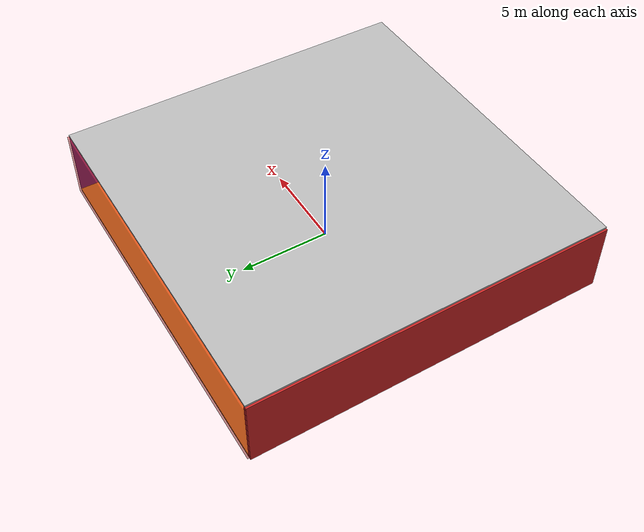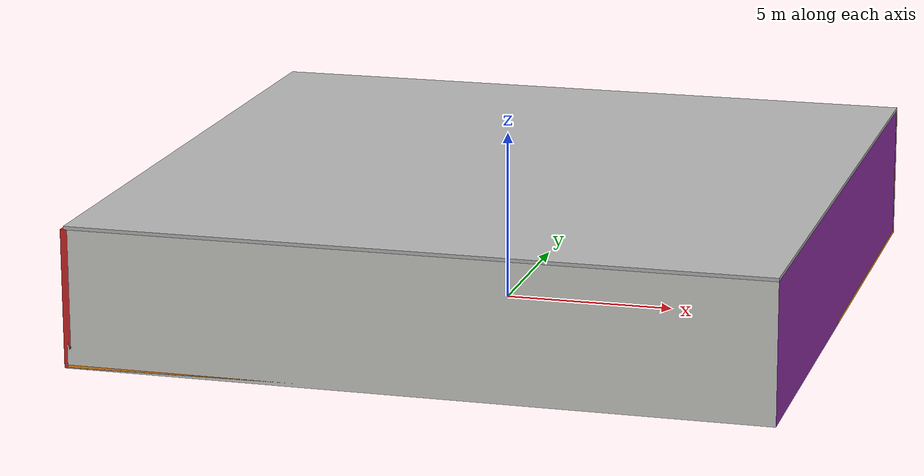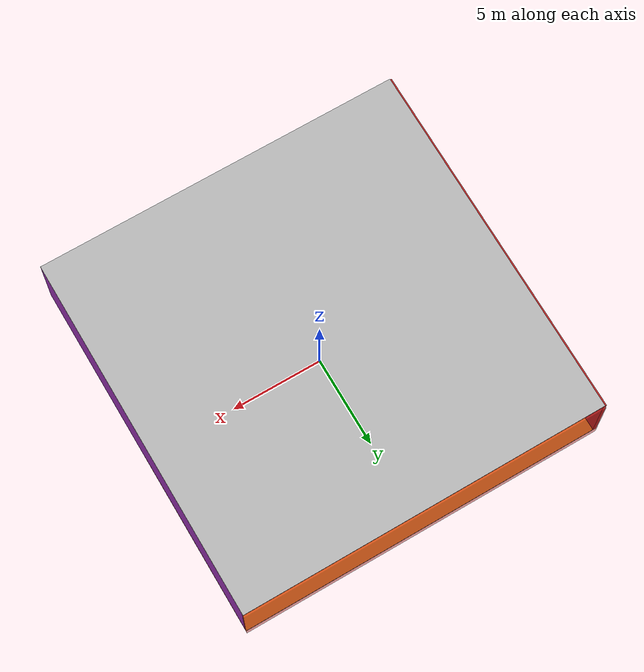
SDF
<sdf version="1.4">
 <world name="default">
  <physics type="ode">
   <max_step_size>0.001</max_step_size>
   <real_time_factor>1</real_time_factor>
   <real_time_update_rate>1000</real_time_update_rate>
   <gravity>0 0 -9.8</gravity>
  </physics>
  <scene><ambient>0.4 0.4 0.4 1</ambient><background>0.7 0.7 0.7 1</background><shadows>1</shadows></scene>
  <model name="Surrounding">
   <static>1</static>
   <link name="Ceiling">
    <collision name="Ceiling_Collision"><geometry><box><size>20 20 0.1</size></box></geometry></collision>
    <visual name="Ceiling_Visual">
     <geometry><box><size>20 20 0.1</size></box></geometry>
     <material>
      <script><uri>file://media/materials/scripts/gazebo.material</uri><name>Gazebo/Pioneer2Body</name></script>
     </material>
    </visual>
    <pose>0 0 4.05 0 0 0</pose>
   </link>
   <link name="Wall_South">
    <collision name="Wall_South_Collision">
     <geometry><box><size>20 0 4</size></box></geometry>
     <pose>0 0 2 0 -0 0</pose>
    </collision>
    <visual name="Wall_South_Visual">
     <pose>0 0 2 0 -0 0</pose>
     <geometry><box><size>20 0 4</size></box></geometry>
     <material>
      <script><uri>file://media/materials/scripts/gazebo.material</uri><name>Gazebo/CeilingTiled</name></script>
     </material>
    </visual>
    <velocity_decay><linear>0</linear><angular>0</angular></velocity_decay>
    <pose>0 -10 0 0 -0 0</pose>
   </link>
   <link name="Wall_East">
    <collision name="Wall_21_Collision">
     <geometry><box><size>20 0 4</size></box></geometry>
     <pose>0 0 2 0 -0 0</pose>
    </collision>
    <visual name="Wall_21_Visual">
     <pose>0 0 2 0 -0 0</pose>
     <geometry><box><size>20 0 4</size></box></geometry>
     <material>
      <script><uri>file://media/materials/scripts/gazebo.material</uri><name>Gazebo/PurpleGlow</name></script>
     </material>
    </visual>
    <velocity_decay><linear>0</linear><angular>0</angular></velocity_decay>
    <pose>10 0 0 0 -0 1.5708</pose>
   </link>
   <link name="Wall_North">
    <collision name="Wall_22_Collision">
     <geometry><box><size>20 0.2 4</size></box></geometry>
     <pose>0 0 2 0 -0 0</pose>
    </collision>
    <visual name="Wall_22_Visual">
     <pose>0 0 2 0 -0 0</pose>
     <geometry><box><size>20 0.2 4</size></box></geometry>
     <material>
      <script><uri>file://media/materials/scripts/gazebo.material</uri><name>Gazebo/RedTransparent</name></script>
     </material>
    </visual>
    <velocity_decay><linear>0</linear><angular>0</angular></velocity_decay>
    <pose>0 10 0 0 -0 0</pose>
   </link>
   <link name="Wall_West">
    <collision name="Wall_23_Collision">
     <geometry><box><size>20 0.2 4</size></box></geometry>
     <pose>0 0 2 0 -0 0</pose>
    </collision>
    <visual name="Wall_23_Visual">
     <pose>0 0 2 0 -0 0</pose>
     <geometry><box><size>20 0.2 4</size></box></geometry>
     <material>
      <script><uri>file://media/materials/scripts/gazebo.material</uri><name>Gazebo/RedBright</name></script>
     </material>
    </visual>
    <velocity_decay><linear>0</linear><angular>0</angular></velocity_decay>
    <pose>-10 0 0 0 0 -1.5708</pose>
   </link>
   <link name="Ground_link">
    <collision name="collision">
     <pose>0 0 .05 0 -0 0</pose>
     <geometry><box><size>20 20 0.1</size></box></geometry>
    </collision>
    <visual name="visual">
     <pose>0 0 .05 0 -0 0</pose>
     <geometry><box><size>20 20 0.1</size></box></geometry>
     <material>
      <script><uri>file://media/materials/scripts/gazebo.material</uri><name>Gazebo/Orange</name></script>
     </material>
    </visual>
   </link>
   <static>1</static>
  </model>
  <spherical_coordinates>
   <surface_model>EARTH_WGS84</surface_model>
   <latitude_deg>0</latitude_deg>
   <longitude_deg>0</longitude_deg>
   <elevation>0</elevation>
   <heading_deg>0</heading_deg>
  </spherical_coordinates>
  <light name="lightball_0" type="diffuse">
   <diffuse>0.8 0.8 0.8 1</diffuse>
   <specular>0.2 0.2 0.2 1</specular>
   <attenuation>
    <range>100</range>
    <constant>0.7</constant>
    <linear>0.01</linear>
    <quadratic>0.001</quadratic>
   </attenuation>
   <direction>-0.5 0.1 -0.9</direction>
   <pose>7.82493126592 -6.92291173158 2.69502244922 0 0 0</pose>
  </light>
  <light name="lightball_1" type="diffuse">
   <diffuse>0.8 0.8 0.8 1</diffuse>
   <specular>0.2 0.2 0.2 1</specular>
   <attenuation>
    <range>100</range>
    <constant>0.7</constant>
    <linear>0.01</linear>
    <quadratic>0.001</quadratic>
   </attenuation>
   <direction>-0.5 0.1 -0.9</direction>
   <pose>-3.49757872353 8.75724561541 2.18994722278 0 0 0</pose>
  </light>
  <light name="lightball_2" type="diffuse">
   <diffuse>0.8 0.8 0.8 1</diffuse>
   <specular>0.2 0.2 0.2 1</specular>
   <attenuation>
    <range>100</range>
    <constant>0.7</constant>
    <linear>0.01</linear>
    <quadratic>0.001</quadratic>
   </attenuation>
   <direction>-0.5 0.1 -0.9</direction>
   <pose>-4.8954982356 -3.72118758691 3.81968941838 0 0 0</pose>
  </light>
  <light name="lightball_3" type="diffuse">
   <diffuse>0.8 0.8 0.8 1</diffuse>
   <specular>0.2 0.2 0.2 1</specular>
   <attenuation>
    <range>100</range>
    <constant>0.7</constant>
    <linear>0.01</linear>
    <quadratic>0.001</quadratic>
   </attenuation>
   <direction>-0.5 0.1 -0.9</direction>
   <pose>3.42710658162 4.81994022885 2.98305673027 0 0 0</pose>
  </light>
  <light name="lightball_4" type="diffuse">
   <diffuse>0.8 0.8 0.8 1</diffuse>
   <specular>0.2 0.2 0.2 1</specular>
   <attenuation>
    <range>100</range>
    <constant>0.7</constant>
    <linear>0.01</linear>
    <quadratic>0.001</quadratic>
   </attenuation>
   <direction>-0.5 0.1 -0.9</direction>
   <pose>2.01994198616 -6.88800878001 1.43747455907 0 0 0</pose>
  </light>
  <light name="lightball_5" type="diffuse">
   <diffuse>0.8 0.8 0.8 1</diffuse>
   <specular>0.2 0.2 0.2 1</specular>
   <attenuation>
    <range>100</range>
    <constant>0.7</constant>
    <linear>0.01</linear>
    <quadratic>0.001</quadratic>
   </attenuation>
   <direction>-0.5 0.1 -0.9</direction>
   <pose>5.61493045503 -5.76565323642 3.30082951008 0 0 0</pose>
  </light>
  <light name="lightball_6" type="diffuse">
   <diffuse>0.8 0.8 0.8 1</diffuse>
   <specular>0.2 0.2 0.2 1</specular>
   <attenuation>
    <range>100</range>
    <constant>0.7</constant>
    <linear>0.01</linear>
    <quadratic>0.001</quadratic>
   </attenuation>
   <direction>-0.5 0.1 -0.9</direction>
   <pose>-1.82578209651 2.25132053834 2.56004296911 0 0 0</pose>
  </light>
  <include><uri>model://table</uri><pose>-7.75698630295 -4.92291489617 0 0 0 0.978158269924</pose></include>
  <include>
   <uri>model://textured_shapes</uri>
   <pose>-4.99551240352 -5.62452317427 0 0 0 1.93617248474</pose>
  </include>
  <include><uri>model://table</uri><pose>-2.09185542106 -1.60434215021 0 0 0 0.822478183985</pose></include>
  <include>
   <uri>model://robocup_3Dsim_goal</uri>
   <pose>1.15072788331 -0.339656132092 0 0 0 2.61141641549</pose>
  </include>
  <include>
   <uri>model://textured_shapes</uri>
   <pose>6.68426317496 -0.495723410711 0 0 0 0.170678727881</pose>
  </include>
 </world>
</sdf>

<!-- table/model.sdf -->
<sdf version="1.5">
  <model name="table">
    <static>true</static>
    <link name="link">
      <collision name="surface">
        <pose>0 0 1.0 0 0 0</pose>
        <geometry>
          <box>
            <size>1.5 0.8 0.03</size>
          </box>
        </geometry>
        <surface>
          <friction>
            <ode>
              <mu>0.6</mu>
              <mu2>0.6</mu2>
            </ode>
          </friction>
        </surface>
      </collision>
      <visual name="visual1">
        <pose>0 0 1.0 0 0 0</pose>
        <geometry>
          <box>
            <size>1.5 0.8 0.03</size>
          </box>
        </geometry>
        <material>
          <script>
            <uri>model://media/materials/scripts/gazebo.material</uri>
            <name>Gazebo/Wood</name>
          </script>
        </material>
      </visual>
      <collision name="front_left_leg">
        <pose>0.68 0.38 0.5 0 0 0</pose>
        <geometry>
          <cylinder>
            <radius>0.02</radius>
            <length>1.0</length>
          </cylinder>
        </geometry>
      </collision>
      <visual name="front_left_leg">
        <pose>0.68 0.38 0.5 0 0 0</pose>
        <geometry>
          <cylinder>
            <radius>0.02</radius>
            <length>1.0</length>
          </cylinder>
        </geometry>
        <material>
          <script>
            <uri>model://media/materials/scripts/gazebo.material</uri>
            <name>Gazebo/Grey</name>
          </script>
        </material>
      </visual>
      <collision name="front_right_leg">
        <pose>0.68 -0.38 0.5 0 0 0</pose>
        <geometry>
          <cylinder>
            <radius>0.02</radius>
            <length>1.0</length>
          </cylinder>
        </geometry>
      </collision>
      <visual name="front_right_leg">
        <pose>0.68 -0.38 0.5 0 0 0</pose>
        <geometry>
          <cylinder>
            <radius>0.02</radius>
            <length>1.0</length>
          </cylinder>
        </geometry>
        <material>
          <script>
            <uri>model://media/materials/scripts/gazebo.material</uri>
            <name>Gazebo/Grey</name>
          </script>
        </material>
      </visual>
      <collision name="back_right_leg">
        <pose>-0.68 -0.38 0.5 0 0 0</pose>
        <geometry>
          <cylinder>
            <radius>0.02</radius>
            <length>1.0</length>
          </cylinder>
        </geometry>
      </collision>
      <visual name="back_right_leg">
        <pose>-0.68 -0.38 0.5 0 0 0</pose>
        <geometry>
          <cylinder>
            <radius>0.02</radius>
            <length>1.0</length>
          </cylinder>
        </geometry>
        <material>
          <script>
            <uri>model://media/materials/scripts/gazebo.material</uri>
            <name>Gazebo/Grey</name>
          </script>
        </material>
      </visual>
      <collision name="back_left_leg">
        <pose>-0.68 0.38 0.5 0 0 0</pose>
        <geometry>
          <cylinder>
            <radius>0.02</radius>
            <length>1.0</length>
          </cylinder>
        </geometry>
      </collision>
      <visual name="back_left_leg">
        <pose>-0.68 0.38 0.5 0 0 0</pose>
        <geometry>
          <cylinder>
            <radius>0.02</radius>
            <length>1.0</length>
          </cylinder>
        </geometry>
        <material>
          <script>
            <uri>model://media/materials/scripts/gazebo.material</uri>
            <name>Gazebo/Grey</name>
          </script>
        </material>
      </visual>
    </link>
  </model>
</sdf>

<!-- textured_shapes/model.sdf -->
<sdf version="1.6">
  <model name="textured_shapes">
    <pose>0 0 0.5 0 0 0</pose>
    <link name="box">
      <pose>0 -1.5 0 0 0 0</pose>
      <collision name="collision">
        <geometry>
          <box>
            <size>1 1 1</size>
          </box>
        </geometry>
      </collision>
      <visual name="visual">
        <geometry>
          <box>
            <size>1 1 1</size>
          </box>
        </geometry>
        <material>
          <script>
            <uri>model://../model_source/models/textured_shapes/materials/scripts</uri>
            <uri>model://../model_source/models/textured_shapes/materials/textures</uri>
            <name>TexturedShape/Squares</name>
          </script>
        </material>
      </visual>
    </link>
    <link name="sphere">
      <collision name="collision">
        <geometry>
          <sphere>
            <radius>0.5</radius>
          </sphere>
        </geometry>
      </collision>
      <visual name="visual">
        <geometry>
          <sphere>
            <radius>0.5</radius>
          </sphere>
        </geometry>
        <material>
          <script>
            <uri>model://../model_source/models/textured_shapes/materials/scripts</uri>
            <uri>model://../model_source/models/textured_shapes/materials/textures</uri>
            <name>TexturedShape/Squares</name>
          </script>
        </material>
      </visual>
    </link>
    <link name="cylinder">
      <pose>0 1.5 0 0 0 0</pose>
      <collision name="collision">
        <geometry>
          <cylinder>
            <radius>0.5</radius>
            <length>1</length>
          </cylinder>
        </geometry>
      </collision>
      <visual name="visual">
        <geometry>
          <cylinder>
            <radius>0.5</radius>
            <length>1</length>
          </cylinder>
        </geometry>
        <material>
          <script>
            <uri>model://../model_source/models/textured_shapes/materials/scripts</uri>
            <uri>model://../model_source/models/textured_shapes/materials/textures</uri>
            <name>TexturedShape/Squares</name>
          </script>
        </material>
      </visual>
    </link>
  </model>
</sdf>

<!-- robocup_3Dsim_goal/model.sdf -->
<sdf version="1.5">
  <model name="robocup_3d_goal">
    <static>true</static>
    <link name="left_post">
      <pose>0 1.05 0.45 0 0 0</pose>
      <collision name="collision">
        <geometry>
          <cylinder>
            <radius>0.05</radius>
            <length>0.9</length>
          </cylinder>
        </geometry>
      </collision>
      <visual name="visual">
        <geometry>
          <cylinder>
            <radius>0.05</radius>
            <length>0.9</length>
          </cylinder>
        </geometry>
        <material>
          <script>
            <uri>file://media/materials/scripts/gazebo.material</uri>
            <name>Gazebo/ZincYellow</name>
          </script>
        </material>
      </visual>
    </link>
    <link name="left_support_horiz_lower">
      <pose>0.30 1.05 0.01 0 0 0</pose>
      <collision name="collision">
        <geometry>
          <box>
            <size>0.50 0.02 0.02</size>
          </box>
        </geometry>
      </collision>
      <visual name="visual">
        <geometry>
          <box>
            <size>0.50 0.02 0.02</size>
          </box>
        </geometry>
        <material>
          <script>
            <uri>file://media/materials/scripts/gazebo.material</uri>
            <name>Gazebo/White</name>
          </script>
        </material>
      </visual>
    </link>
    <link name="left_support_horiz_upper">
      <pose>0.30 1.05 0.79 0 0 0</pose>
      <collision name="collision">
        <geometry>
          <box>
            <size>0.50 0.02 0.02</size>
          </box>
        </geometry>
      </collision>
      <visual name="visual">
        <geometry>
          <box>
            <size>0.50 0.02 0.02</size>
          </box>
        </geometry>
        <material>
          <script>
            <uri>file://media/materials/scripts/gazebo.material</uri>
            <name>Gazebo/White</name>
          </script>
        </material>
      </visual>
    </link>
    <link name="left_support_vertical">
      <pose>0.56 1.05 0.4 0 1.5708 0</pose>
      <collision name="collision">
        <geometry>
          <box>
            <size>0.80 0.02 0.02</size>
          </box>
        </geometry>
      </collision>
      <visual name="visual">
        <geometry>
          <box>
            <size>0.80 0.02 0.02</size>
          </box>
        </geometry>
        <material>
          <script>
            <uri>file://media/materials/scripts/gazebo.material</uri>
            <name>Gazebo/White</name>
          </script>
        </material>
      </visual>
    </link>
    <link name="right_support_horiz_lower">
      <pose>0.30 -1.05 0.01 0 0 0</pose>
      <collision name="collision">
        <geometry>
          <box>
            <size>0.50 0.02 0.02</size>
          </box>
        </geometry>
      </collision>
      <visual name="visual">
        <geometry>
          <box>
            <size>0.50 0.02 0.02</size>
          </box>
        </geometry>
        <material>
          <script>
            <uri>file://media/materials/scripts/gazebo.material</uri>
            <name>Gazebo/White</name>
          </script>
        </material>
      </visual>
    </link>
    <link name="right_support_horiz_upper">
      <pose>0.30 -1.05 0.79 0 0 0</pose>
      <collision name="collision">
        <geometry>
          <box>
            <size>0.50 0.02 0.02</size>
          </box>
        </geometry>
      </collision>
      <visual name="visual">
        <geometry>
          <box>
            <size>0.50 0.02 0.02</size>
          </box>
        </geometry>
        <material>
          <script>
            <uri>file://media/materials/scripts/gazebo.material</uri>
            <name>Gazebo/White</name>
          </script>
        </material>
      </visual>
    </link>
    <link name="right_support_vertical">
      <pose>0.56 -1.05 0.4 0 1.5708 0</pose>
      <collision name="collision">
        <geometry>
          <box>
            <size>0.80 0.02 0.02</size>
          </box>
        </geometry>
      </collision>
      <visual name="visual">
        <geometry>
          <box>
            <size>0.80 0.02 0.02</size>
          </box>
        </geometry>
        <material>
          <script>
            <uri>file://media/materials/scripts/gazebo.material</uri>
            <name>Gazebo/White</name>
          </script>
        </material>
      </visual>
    </link>
    <link name="center_support_horiz_lower">
      <pose>0.56 0 0.01 0 1.5708 0</pose>
      <collision name="collision">
        <geometry>
          <box>
            <size>0.02 2.08 0.02</size>
          </box>
        </geometry>
      </collision>
      <visual name="visual">
        <geometry>
          <box>
            <size>0.02 2.08 0.02</size>
          </box>
        </geometry>
        <material>
          <script>
            <uri>file://media/materials/scripts/gazebo.material</uri>
            <name>Gazebo/White</name>
          </script>
        </material>
      </visual>
    </link>
    <link name="center_support_horiz_upper">
      <pose>0.56 0 0.79 0 1.5708 0</pose>
      <collision name="collision">
        <geometry>
          <box>
            <size>0.02 2.08 0.02</size>
          </box>
        </geometry>
      </collision>
      <visual name="visual">
        <geometry>
          <box>
            <size>0.02 2.08 0.02</size>
          </box>
        </geometry>
        <material>
          <script>
            <uri>file://media/materials/scripts/gazebo.material</uri>
            <name>Gazebo/White</name>
          </script>
        </material>
      </visual>
    </link>
    <link name="right_post">
      <pose>0 -1.05 0.45 0 0 0</pose>
      <collision name="collision">
        <geometry>
          <cylinder>
            <radius>0.05</radius>
            <length>0.9</length>
          </cylinder>
        </geometry>
      </collision>
      <visual name="visual">
        <geometry>
          <cylinder>
            <radius>0.05</radius>
            <length>0.9</length>
          </cylinder>
        </geometry>
        <material>
          <script>
            <uri>file://media/materials/scripts/gazebo.material</uri>
            <name>Gazebo/ZincYellow</name>
          </script>
        </material>
      </visual>
    </link>
    <link name="crossbar">
      <pose>0 0 0.85 1.57 1.57 0</pose>
      <collision name="collision">
        <geometry>
          <cylinder>
            <radius>0.05</radius>
            <length>2.0</length>
          </cylinder>
        </geometry>
      </collision>
      <visual name="visual">
        <geometry>
          <cylinder>
            <radius>0.05</radius>
            <length>2.0</length>
          </cylinder>
        </geometry>
        <material>
          <script>
            <uri>file://media/materials/scripts/gazebo.material</uri>
            <name>Gazebo/ZincYellow</name>
          </script>
        </material>
      </visual>
    </link>
    <link name="center_net">
      <pose>0.56 0 0.40 0 0 0</pose>
      <collision name="collision">
        <geometry>
          <box>
            <size>0.01 2.1 0.80</size>
          </box>
        </geometry>
      </collision>
      <visual name="visual">
        <geometry>
          <box>
            <size>0.01 2.1 0.80</size>
          </box>
        </geometry>
        <material>
          <script>
            <uri>model://../model_source/models/robocup09_spl_field/materials/scripts/</uri>
            <uri>model://../model_source/models/robocup09_spl_field/materials/textures/</uri>
            <name>RoboCup/Net</name>
          </script>
        </material>
      </visual>
    </link>
    <link name="left_net">
      <pose>0.30 1.05 0.40 0 0 0</pose>
      <collision name="collision">
        <geometry>
          <box>
            <size>0.50 0.01 0.76</size>
          </box>
        </geometry>
      </collision>
      <visual name="visual">
        <geometry>
          <box>
            <size>0.50 0.01 0.76</size>
          </box>
        </geometry>
        <material>
          <script>
            <uri>model://../model_source/models/robocup09_spl_field/materials/scripts/</uri>
            <uri>model://../model_source/models/robocup09_spl_field/materials/textures/</uri>
            <name>RoboCup/Net</name>
          </script>
        </material>
      </visual>
    </link>
    <link name="right_net">
      <pose>0.30 -1.05 0.40 0 0 0</pose>
      <collision name="collision">
        <geometry>
          <box>
            <size>0.50 0.01 0.76</size>
          </box>
        </geometry>
      </collision>
      <visual name="visual">
        <geometry>
          <box>
            <size>0.50 0.01 0.76</size>
          </box>
        </geometry>
        <material>
          <script>
            <uri>model://../model_source/models/robocup09_spl_field/materials/scripts/</uri>
            <uri>model://../model_source/models/robocup09_spl_field/materials/textures/</uri>
            <name>RoboCup/Net</name>
          </script>
        </material>
      </visual>
    </link>
  </model>
</sdf>
